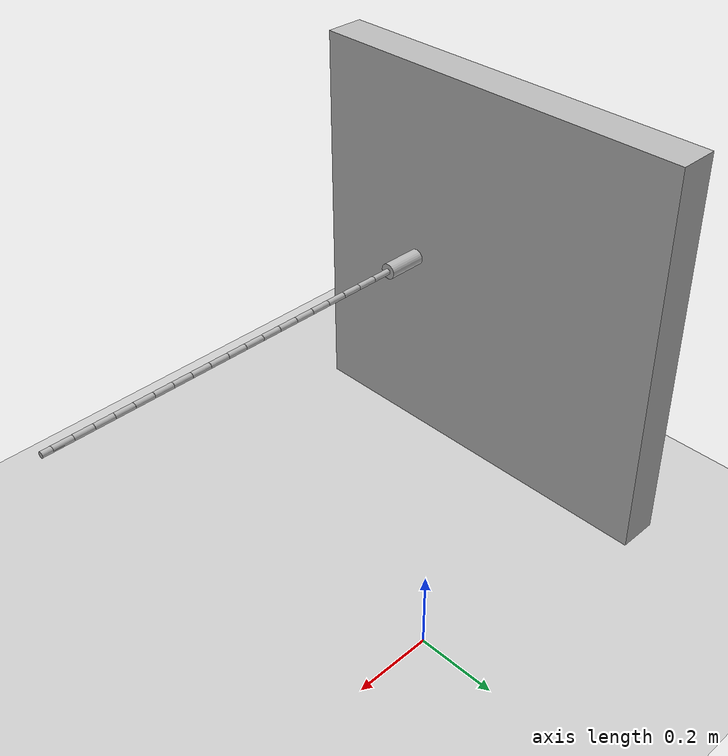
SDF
<sdf version="1.6">
 <world name="default">
  <light name="sun" type="directional">
   <pose>0 0 10 0 -0 0</pose>
   <diffuse>0.8 0.8 0.8 1</diffuse>
   <specular>0.1 0.1 0.1 1</specular>
   <attenuation>
    <range>1000</range>
    <constant>0.9</constant>
    <linear>0.01</linear>
    <quadratic>0.001</quadratic>
   </attenuation>
   <direction>-0.5 0.5 -1</direction>
  </light>
  <model name="ground_plane">
   <static>1</static>
   <link name="link">
    <collision name="collision">
     <geometry><plane><normal>0 0 1</normal><size>100 100</size></plane></geometry>
     <surface><friction><ode><mu>100</mu><mu2>50</mu2></ode></friction></surface>
    </collision>
    <visual name="visual">
     <cast_shadows>0</cast_shadows>
     <geometry><plane><normal>0 0 1</normal><size>100 100</size></plane></geometry>
     <material>
      <script><uri>file://media/materials/scripts/gazebo.material</uri><name>Gazebo/Grey</name></script>
     </material>
    </visual>
   </link>
  </model>
  <gravity>0 0 -9.8</gravity>
  <magnetic_field>6e-06 2.3e-05 -4.2e-05</magnetic_field>
  <atmosphere type="adiabatic"/>
  <physics name="default_physics" default="0" type="ode">
   <max_step_size>0.001</max_step_size>
   <real_time_factor>1</real_time_factor>
   <real_time_update_rate>1000</real_time_update_rate>
  </physics>
  <scene><ambient>0.4 0.4 0.4 1</ambient><background>0.7 0.7 0.7 1</background><shadows>1</shadows></scene>
  <spherical_coordinates>
   <surface_model>EARTH_WGS84</surface_model>
   <latitude_deg>0</latitude_deg>
   <longitude_deg>0</longitude_deg>
   <elevation>0</elevation>
   <heading_deg>0</heading_deg>
  </spherical_coordinates>
  <model name="cable_1">
   <pose>-0.439028 -0.50644 0.600001 0 -4e-06 0</pose>
   <joint name="joint_01_world" type="revolute">
    <child>plug</child>
    <parent>world</parent>
    <axis>
     <xyz>0.5 0 0.2</xyz>
     <dynamics>
      <damping>10</damping>
      <friction>0</friction>
      <spring_reference>0</spring_reference>
      <spring_stiffness>0</spring_stiffness>
     </dynamics>
     <use_parent_model_frame>1</use_parent_model_frame>
     <limit><lower>-1e+16</lower><upper>1e+16</upper></limit>
    </axis>
   </joint>
   <link name="plug">
    <pose>0 0 0 3.14159 1.57079 3.14159</pose>
    <inertial>
     <mass>0.1</mass>
     <inertia><ixx>0.01</ixx><ixy>0</ixy><ixz>0</ixz><iyy>0.01</iyy><iyz>0</iyz><izz>0.01</izz></inertia>
    </inertial>
    <collision name="plug_collision">
     <geometry><cylinder><radius>0.02</radius><length>0.1</length></cylinder></geometry>
    </collision>
    <visual name="plug_vis">
     <geometry><cylinder><radius>0.02</radius><length>0.1</length></cylinder></geometry>
    </visual>
   </link>
   <link name="link_01">
    <pose>0.05 0 0 0 -0 0</pose>
    <inertial>
     <mass>0.1</mass>
     <inertia><ixx>0.01</ixx><ixy>0</ixy><ixz>0</ixz><iyy>0.01</iyy><iyz>0</iyz><izz>0.01</izz></inertia>
    </inertial>
    <collision name="link_01_collision">
     <pose>0.025 0 0 0 1.57079 0</pose>
     <geometry><cylinder><length>0.05</length><radius>0.0075</radius></cylinder></geometry>
    </collision>
    <visual name="link_01_vis">
     <pose>0.025 0 0 0 1.57079 0</pose>
     <geometry><cylinder><length>0.05</length><radius>0.0075</radius></cylinder></geometry>
    </visual>
   </link>
   <joint name="joint_plug" type="revolute">
    <child>link_01</child>
    <parent>plug</parent>
    <axis>
     <xyz>0 0 0</xyz>
     <limit><lower>-0.7</lower><upper>0.7</upper></limit>
     <dynamics>
      <damping>10</damping>
      <friction>0</friction>
      <spring_reference>0</spring_reference>
      <spring_stiffness>0</spring_stiffness>
     </dynamics>
     <use_parent_model_frame>1</use_parent_model_frame>
    </axis>
   </joint>
   <link name="sphere_02">
    <gravity>0</gravity>
    <pose>0.1 0 0 0 -0 0</pose>
    <inertial>
     <mass>0.1</mass>
     <inertia><ixx>0.01</ixx><ixy>0</ixy><ixz>0</ixz><iyy>0.01</iyy><iyz>0</iyz><izz>0.01</izz></inertia>
    </inertial>
    <collision name="sphere_02_collision">
     <geometry><sphere><radius>0.0075</radius></sphere></geometry>
    </collision>
    <visual name="sphere_02_vis"><geometry><sphere><radius>0.0075</radius></sphere></geometry></visual>
   </link>
   <joint name="joint_02_1" type="revolute">
    <child>sphere_02</child>
    <parent>link_01</parent>
    <axis>
     <xyz>0 0 1</xyz>
     <limit><lower>-0.7</lower><upper>0.7</upper></limit>
     <dynamics>
      <damping>10</damping>
      <friction>0</friction>
      <spring_reference>0</spring_reference>
      <spring_stiffness>0</spring_stiffness>
     </dynamics>
     <use_parent_model_frame>1</use_parent_model_frame>
    </axis>
   </joint>
   <link name="link_02">
    <pose>0.1 0 0 0 -0 0</pose>
    <inertial>
     <mass>0.1</mass>
     <inertia><ixx>0.01</ixx><ixy>0</ixy><ixz>0</ixz><iyy>0.01</iyy><iyz>0</iyz><izz>0.01</izz></inertia>
    </inertial>
    <collision name="link_02_collision">
     <pose>0.025 0 0 0 1.57079 0</pose>
     <geometry><cylinder><length>0.05</length><radius>0.0075</radius></cylinder></geometry>
    </collision>
    <visual name="link_02_vis">
     <pose>0.025 0 0 0 1.57079 0</pose>
     <geometry><cylinder><length>0.05</length><radius>0.0075</radius></cylinder></geometry>
    </visual>
   </link>
   <joint name="joint_02_2" type="revolute">
    <child>link_02</child>
    <parent>sphere_02</parent>
    <axis>
     <xyz>0 1 0</xyz>
     <limit><lower>-0.7</lower><upper>0.7</upper></limit>
     <dynamics>
      <damping>10</damping>
      <friction>0</friction>
      <spring_reference>0</spring_reference>
      <spring_stiffness>0</spring_stiffness>
     </dynamics>
     <use_parent_model_frame>1</use_parent_model_frame>
    </axis>
   </joint>
   <link name="sphere_03">
    <gravity>0</gravity>
    <pose>0.15 0 0 0 -0 0</pose>
    <inertial>
     <mass>0.1</mass>
     <inertia><ixx>0.01</ixx><ixy>0</ixy><ixz>0</ixz><iyy>0.01</iyy><iyz>0</iyz><izz>0.01</izz></inertia>
    </inertial>
    <collision name="sphere_03_collision">
     <geometry><sphere><radius>0.0075</radius></sphere></geometry>
    </collision>
    <visual name="sphere_03_vis"><geometry><sphere><radius>0.0075</radius></sphere></geometry></visual>
   </link>
   <joint name="joint_03_1" type="revolute">
    <child>sphere_03</child>
    <parent>link_02</parent>
    <axis>
     <xyz>0 0 1</xyz>
     <limit><lower>-0.7</lower><upper>0.7</upper></limit>
     <dynamics>
      <damping>10</damping>
      <friction>0</friction>
      <spring_reference>0</spring_reference>
      <spring_stiffness>0</spring_stiffness>
     </dynamics>
     <use_parent_model_frame>1</use_parent_model_frame>
    </axis>
   </joint>
   <link name="link_03">
    <pose>0.15 0 0 0 -0 0</pose>
    <inertial>
     <mass>0.1</mass>
     <inertia><ixx>0.01</ixx><ixy>0</ixy><ixz>0</ixz><iyy>0.01</iyy><iyz>0</iyz><izz>0.01</izz></inertia>
    </inertial>
    <collision name="link_03_collision">
     <pose>0.025 0 0 0 1.57079 0</pose>
     <geometry><cylinder><length>0.05</length><radius>0.0075</radius></cylinder></geometry>
    </collision>
    <visual name="link_03_vis">
     <pose>0.025 0 0 0 1.57079 0</pose>
     <geometry><cylinder><length>0.05</length><radius>0.0075</radius></cylinder></geometry>
    </visual>
   </link>
   <joint name="joint_03_2" type="revolute">
    <child>link_03</child>
    <parent>sphere_03</parent>
    <axis>
     <xyz>0 1 0</xyz>
     <limit><lower>-0.7</lower><upper>0.7</upper></limit>
     <dynamics>
      <damping>10</damping>
      <friction>0</friction>
      <spring_reference>0</spring_reference>
      <spring_stiffness>0</spring_stiffness>
     </dynamics>
     <use_parent_model_frame>1</use_parent_model_frame>
    </axis>
   </joint>
   <link name="sphere_04">
    <gravity>0</gravity>
    <pose>0.2 0 0 0 -0 0</pose>
    <inertial>
     <mass>0.1</mass>
     <inertia><ixx>0.01</ixx><ixy>0</ixy><ixz>0</ixz><iyy>0.01</iyy><iyz>0</iyz><izz>0.01</izz></inertia>
    </inertial>
    <collision name="sphere_04_collision">
     <geometry><sphere><radius>0.0075</radius></sphere></geometry>
    </collision>
    <visual name="sphere_04_vis"><geometry><sphere><radius>0.0075</radius></sphere></geometry></visual>
   </link>
   <joint name="joint_04_1" type="revolute">
    <child>sphere_04</child>
    <parent>link_03</parent>
    <axis>
     <xyz>0 0 1</xyz>
     <limit><lower>-0.7</lower><upper>0.7</upper></limit>
     <dynamics>
      <damping>10</damping>
      <friction>0</friction>
      <spring_reference>0</spring_reference>
      <spring_stiffness>0</spring_stiffness>
     </dynamics>
     <use_parent_model_frame>1</use_parent_model_frame>
    </axis>
   </joint>
   <link name="link_04">
    <pose>0.2 0 0 0 -0 0</pose>
    <inertial>
     <mass>0.1</mass>
     <inertia><ixx>0.01</ixx><ixy>0</ixy><ixz>0</ixz><iyy>0.01</iyy><iyz>0</iyz><izz>0.01</izz></inertia>
    </inertial>
    <collision name="link_04_collision">
     <pose>0.025 0 0 0 1.57079 0</pose>
     <geometry><cylinder><length>0.05</length><radius>0.0075</radius></cylinder></geometry>
    </collision>
    <visual name="link_04_vis">
     <pose>0.025 0 0 0 1.57079 0</pose>
     <geometry><cylinder><length>0.05</length><radius>0.0075</radius></cylinder></geometry>
    </visual>
   </link>
   <joint name="joint_04_2" type="revolute">
    <child>link_04</child>
    <parent>sphere_04</parent>
    <axis>
     <xyz>0 1 0</xyz>
     <limit><lower>-0.7</lower><upper>0.7</upper></limit>
     <dynamics>
      <damping>10</damping>
      <friction>0</friction>
      <spring_reference>0</spring_reference>
      <spring_stiffness>0</spring_stiffness>
     </dynamics>
     <use_parent_model_frame>1</use_parent_model_frame>
    </axis>
   </joint>
   <link name="sphere_05">
    <gravity>0</gravity>
    <pose>0.25 0 0 0 -0 0</pose>
    <inertial>
     <mass>0.1</mass>
     <inertia><ixx>0.01</ixx><ixy>0</ixy><ixz>0</ixz><iyy>0.01</iyy><iyz>0</iyz><izz>0.01</izz></inertia>
    </inertial>
    <collision name="sphere_05_collision">
     <geometry><sphere><radius>0.0075</radius></sphere></geometry>
    </collision>
    <visual name="sphere_05_vis"><geometry><sphere><radius>0.0075</radius></sphere></geometry></visual>
   </link>
   <joint name="joint_05_1" type="revolute">
    <child>sphere_05</child>
    <parent>link_04</parent>
    <axis>
     <xyz>0 0 1</xyz>
     <limit><lower>-0.7</lower><upper>0.7</upper></limit>
     <dynamics>
      <damping>10</damping>
      <friction>0</friction>
      <spring_reference>0</spring_reference>
      <spring_stiffness>0</spring_stiffness>
     </dynamics>
     <use_parent_model_frame>1</use_parent_model_frame>
    </axis>
   </joint>
   <link name="link_05">
    <pose>0.25 0 0 0 -0 0</pose>
    <inertial>
     <mass>0.1</mass>
     <inertia><ixx>0.01</ixx><ixy>0</ixy><ixz>0</ixz><iyy>0.01</iyy><iyz>0</iyz><izz>0.01</izz></inertia>
    </inertial>
    <collision name="link_05_collision">
     <pose>0.025 0 0 0 1.57079 0</pose>
     <geometry><cylinder><length>0.05</length><radius>0.0075</radius></cylinder></geometry>
    </collision>
    <visual name="link_05_vis">
     <pose>0.025 0 0 0 1.57079 0</pose>
     <geometry><cylinder><length>0.05</length><radius>0.0075</radius></cylinder></geometry>
    </visual>
   </link>
   <joint name="joint_05_2" type="revolute">
    <child>link_05</child>
    <parent>sphere_05</parent>
    <axis>
     <xyz>0 1 0</xyz>
     <limit><lower>-0.7</lower><upper>0.7</upper></limit>
     <dynamics>
      <damping>10</damping>
      <friction>0</friction>
      <spring_reference>0</spring_reference>
      <spring_stiffness>0</spring_stiffness>
     </dynamics>
     <use_parent_model_frame>1</use_parent_model_frame>
    </axis>
   </joint>
   <link name="sphere_06">
    <gravity>0</gravity>
    <pose>0.3 0 0 0 -0 0</pose>
    <inertial>
     <mass>0.1</mass>
     <inertia><ixx>0.01</ixx><ixy>0</ixy><ixz>0</ixz><iyy>0.01</iyy><iyz>0</iyz><izz>0.01</izz></inertia>
    </inertial>
    <collision name="sphere_06_collision">
     <geometry><sphere><radius>0.0075</radius></sphere></geometry>
    </collision>
    <visual name="sphere_06_vis"><geometry><sphere><radius>0.0075</radius></sphere></geometry></visual>
   </link>
   <joint name="joint_06_1" type="revolute">
    <child>sphere_06</child>
    <parent>link_05</parent>
    <axis>
     <xyz>0 0 1</xyz>
     <limit><lower>-0.7</lower><upper>0.7</upper></limit>
     <dynamics>
      <damping>10</damping>
      <friction>0</friction>
      <spring_reference>0</spring_reference>
      <spring_stiffness>0</spring_stiffness>
     </dynamics>
     <use_parent_model_frame>1</use_parent_model_frame>
    </axis>
   </joint>
   <link name="link_06">
    <pose>0.3 0 0 0 -0 0</pose>
    <inertial>
     <mass>0.1</mass>
     <inertia><ixx>0.01</ixx><ixy>0</ixy><ixz>0</ixz><iyy>0.01</iyy><iyz>0</iyz><izz>0.01</izz></inertia>
    </inertial>
    <collision name="link_06_collision">
     <pose>0.025 0 0 0 1.57079 0</pose>
     <geometry><cylinder><length>0.05</length><radius>0.0075</radius></cylinder></geometry>
    </collision>
    <visual name="link_06_vis">
     <pose>0.025 0 0 0 1.57079 0</pose>
     <geometry><cylinder><length>0.05</length><radius>0.0075</radius></cylinder></geometry>
    </visual>
   </link>
   <joint name="joint_06_2" type="revolute">
    <child>link_06</child>
    <parent>sphere_06</parent>
    <axis>
     <xyz>0 1 0</xyz>
     <limit><lower>-0.7</lower><upper>0.7</upper></limit>
     <dynamics>
      <damping>10</damping>
      <friction>0</friction>
      <spring_reference>0</spring_reference>
      <spring_stiffness>0</spring_stiffness>
     </dynamics>
     <use_parent_model_frame>1</use_parent_model_frame>
    </axis>
   </joint>
   <link name="sphere_07">
    <gravity>0</gravity>
    <pose>0.35 0 0 0 -0 0</pose>
    <inertial>
     <mass>0.1</mass>
     <inertia><ixx>0.01</ixx><ixy>0</ixy><ixz>0</ixz><iyy>0.01</iyy><iyz>0</iyz><izz>0.01</izz></inertia>
    </inertial>
    <collision name="sphere_07_collision">
     <geometry><sphere><radius>0.0075</radius></sphere></geometry>
    </collision>
    <visual name="sphere_07_vis"><geometry><sphere><radius>0.0075</radius></sphere></geometry></visual>
   </link>
   <joint name="joint_07_1" type="revolute">
    <child>sphere_07</child>
    <parent>link_06</parent>
    <axis>
     <xyz>0 0 1</xyz>
     <limit><lower>-0.7</lower><upper>0.7</upper></limit>
     <dynamics>
      <damping>10</damping>
      <friction>0</friction>
      <spring_reference>0</spring_reference>
      <spring_stiffness>0</spring_stiffness>
     </dynamics>
     <use_parent_model_frame>1</use_parent_model_frame>
    </axis>
   </joint>
   <link name="link_07">
    <pose>0.35 0 0 0 -0 0</pose>
    <inertial>
     <mass>0.1</mass>
     <inertia><ixx>0.01</ixx><ixy>0</ixy><ixz>0</ixz><iyy>0.01</iyy><iyz>0</iyz><izz>0.01</izz></inertia>
    </inertial>
    <collision name="link_07_collision">
     <pose>0.025 0 0 0 1.57079 0</pose>
     <geometry><cylinder><length>0.05</length><radius>0.0075</radius></cylinder></geometry>
    </collision>
    <visual name="link_07_vis">
     <pose>0.025 0 0 0 1.57079 0</pose>
     <geometry><cylinder><length>0.05</length><radius>0.0075</radius></cylinder></geometry>
    </visual>
   </link>
   <joint name="joint_07_2" type="revolute">
    <child>link_07</child>
    <parent>sphere_07</parent>
    <axis>
     <xyz>0 1 0</xyz>
     <limit><lower>-0.7</lower><upper>0.7</upper></limit>
     <dynamics>
      <damping>10</damping>
      <friction>0</friction>
      <spring_reference>0</spring_reference>
      <spring_stiffness>0</spring_stiffness>
     </dynamics>
     <use_parent_model_frame>1</use_parent_model_frame>
    </axis>
   </joint>
   <link name="sphere_08">
    <gravity>0</gravity>
    <pose>0.4 0 0 0 -0 0</pose>
    <inertial>
     <mass>0.1</mass>
     <inertia><ixx>0.01</ixx><ixy>0</ixy><ixz>0</ixz><iyy>0.01</iyy><iyz>0</iyz><izz>0.01</izz></inertia>
    </inertial>
    <collision name="sphere_08_collision">
     <geometry><sphere><radius>0.0075</radius></sphere></geometry>
    </collision>
    <visual name="sphere_08_vis"><geometry><sphere><radius>0.0075</radius></sphere></geometry></visual>
   </link>
   <joint name="joint_08_1" type="revolute">
    <child>sphere_08</child>
    <parent>link_07</parent>
    <axis>
     <xyz>0 0 1</xyz>
     <limit><lower>-0.7</lower><upper>0.7</upper></limit>
     <dynamics>
      <damping>10</damping>
      <friction>0</friction>
      <spring_reference>0</spring_reference>
      <spring_stiffness>0</spring_stiffness>
     </dynamics>
     <use_parent_model_frame>1</use_parent_model_frame>
    </axis>
   </joint>
   <link name="link_08">
    <pose>0.4 0 0 0 -0 0</pose>
    <inertial>
     <mass>0.1</mass>
     <inertia><ixx>0.01</ixx><ixy>0</ixy><ixz>0</ixz><iyy>0.01</iyy><iyz>0</iyz><izz>0.01</izz></inertia>
    </inertial>
    <collision name="link_08_collision">
     <pose>0.025 0 0 0 1.57079 0</pose>
     <geometry><cylinder><length>0.05</length><radius>0.0075</radius></cylinder></geometry>
    </collision>
    <visual name="link_08_vis">
     <pose>0.025 0 0 0 1.57079 0</pose>
     <geometry><cylinder><length>0.05</length><radius>0.0075</radius></cylinder></geometry>
    </visual>
   </link>
   <joint name="joint_08_2" type="revolute">
    <child>link_08</child>
    <parent>sphere_08</parent>
    <axis>
     <xyz>0 1 0</xyz>
     <limit><lower>-0.7</lower><upper>0.7</upper></limit>
     <dynamics>
      <damping>10</damping>
      <friction>0</friction>
      <spring_reference>0</spring_reference>
      <spring_stiffness>0</spring_stiffness>
     </dynamics>
     <use_parent_model_frame>1</use_parent_model_frame>
    </axis>
   </joint>
   <link name="sphere_09">
    <gravity>0</gravity>
    <pose>0.45 0 0 0 -0 0</pose>
    <inertial>
     <mass>0.1</mass>
     <inertia><ixx>0.01</ixx><ixy>0</ixy><ixz>0</ixz><iyy>0.01</iyy><iyz>0</iyz><izz>0.01</izz></inertia>
    </inertial>
    <collision name="sphere_09_collision">
     <geometry><sphere><radius>0.0075</radius></sphere></geometry>
    </collision>
    <visual name="sphere_09_vis"><geometry><sphere><radius>0.0075</radius></sphere></geometry></visual>
   </link>
   <joint name="joint_09_1" type="revolute">
    <child>sphere_09</child>
    <parent>link_08</parent>
    <axis>
     <xyz>0 0 1</xyz>
     <limit><lower>-0.7</lower><upper>0.7</upper></limit>
     <dynamics>
      <damping>10</damping>
      <friction>0</friction>
      <spring_reference>0</spring_reference>
      <spring_stiffness>0</spring_stiffness>
     </dynamics>
     <use_parent_model_frame>1</use_parent_model_frame>
    </axis>
   </joint>
   <link name="link_09">
    <pose>0.45 0 0 0 -0 0</pose>
    <inertial>
     <mass>0.1</mass>
     <inertia><ixx>0.01</ixx><ixy>0</ixy><ixz>0</ixz><iyy>0.01</iyy><iyz>0</iyz><izz>0.01</izz></inertia>
    </inertial>
    <collision name="link_09_collision">
     <pose>0.025 0 0 0 1.57079 0</pose>
     <geometry><cylinder><length>0.05</length><radius>0.0075</radius></cylinder></geometry>
    </collision>
    <visual name="link_09_vis">
     <pose>0.025 0 0 0 1.57079 0</pose>
     <geometry><cylinder><length>0.05</length><radius>0.0075</radius></cylinder></geometry>
    </visual>
   </link>
   <joint name="joint_09_2" type="revolute">
    <child>link_09</child>
    <parent>sphere_09</parent>
    <axis>
     <xyz>0 1 0</xyz>
     <limit><lower>-0.7</lower><upper>0.7</upper></limit>
     <dynamics>
      <damping>10</damping>
      <friction>0</friction>
      <spring_reference>0</spring_reference>
      <spring_stiffness>0</spring_stiffness>
     </dynamics>
     <use_parent_model_frame>1</use_parent_model_frame>
    </axis>
   </joint>
   <link name="sphere_10">
    <gravity>0</gravity>
    <pose>0.5 0 0 0 -0 0</pose>
    <inertial>
     <mass>0.1</mass>
     <inertia><ixx>0.01</ixx><ixy>0</ixy><ixz>0</ixz><iyy>0.01</iyy><iyz>0</iyz><izz>0.01</izz></inertia>
    </inertial>
    <collision name="sphere_10_collision">
     <geometry><sphere><radius>0.0075</radius></sphere></geometry>
    </collision>
    <visual name="sphere_10_vis"><geometry><sphere><radius>0.0075</radius></sphere></geometry></visual>
   </link>
   <joint name="joint_10_1" type="revolute">
    <child>sphere_10</child>
    <parent>link_09</parent>
    <axis>
     <xyz>0 0 1</xyz>
     <limit><lower>-0.7</lower><upper>0.7</upper></limit>
     <dynamics>
      <damping>10</damping>
      <friction>0</friction>
      <spring_reference>0</spring_reference>
      <spring_stiffness>0</spring_stiffness>
     </dynamics>
     <use_parent_model_frame>1</use_parent_model_frame>
    </axis>
   </joint>
   <link name="link_10">
    <pose>0.5 0 0 0 -0 0</pose>
    <inertial>
     <mass>0.1</mass>
     <inertia><ixx>0.01</ixx><ixy>0</ixy><ixz>0</ixz><iyy>0.01</iyy><iyz>0</iyz><izz>0.01</izz></inertia>
    </inertial>
    <collision name="link_10_collision">
     <pose>0.025 0 0 0 1.57079 0</pose>
     <geometry><cylinder><length>0.05</length><radius>0.0075</radius></cylinder></geometry>
    </collision>
    <visual name="link_10_vis">
     <pose>0.025 0 0 0 1.57079 0</pose>
     <geometry><cylinder><length>0.05</length><radius>0.0075</radius></cylinder></geometry>
    </visual>
   </link>
   <joint name="joint_10_2" type="revolute">
    <child>link_10</child>
    <parent>sphere_10</parent>
    <axis>
     <xyz>0 1 0</xyz>
     <limit><lower>-0.7</lower><upper>0.7</upper></limit>
     <dynamics>
      <damping>10</damping>
      <friction>0</friction>
      <spring_reference>0</spring_reference>
      <spring_stiffness>0</spring_stiffness>
     </dynamics>
     <use_parent_model_frame>1</use_parent_model_frame>
    </axis>
   </joint>
   <link name="sphere_11">
    <gravity>0</gravity>
    <pose>0.55 0 0 0 -0 0</pose>
    <inertial>
     <mass>0.1</mass>
     <inertia><ixx>0.01</ixx><ixy>0</ixy><ixz>0</ixz><iyy>0.01</iyy><iyz>0</iyz><izz>0.01</izz></inertia>
    </inertial>
    <collision name="sphere_11_collision">
     <geometry><sphere><radius>0.0075</radius></sphere></geometry>
    </collision>
    <visual name="sphere_11_vis"><geometry><sphere><radius>0.0075</radius></sphere></geometry></visual>
   </link>
   <joint name="joint_11_1" type="revolute">
    <child>sphere_11</child>
    <parent>link_10</parent>
    <axis>
     <xyz>0 0 1</xyz>
     <limit><lower>-0.7</lower><upper>0.7</upper></limit>
     <dynamics>
      <damping>10</damping>
      <friction>0</friction>
      <spring_reference>0</spring_reference>
      <spring_stiffness>0</spring_stiffness>
     </dynamics>
     <use_parent_model_frame>1</use_parent_model_frame>
    </axis>
   </joint>
   <link name="link_11">
    <pose>0.55 0 0 0 -0 0</pose>
    <inertial>
     <mass>0.1</mass>
     <inertia><ixx>0.01</ixx><ixy>0</ixy><ixz>0</ixz><iyy>0.01</iyy><iyz>0</iyz><izz>0.01</izz></inertia>
    </inertial>
    <collision name="link_11_collision">
     <pose>0.025 0 0 0 1.57079 0</pose>
     <geometry><cylinder><length>0.05</length><radius>0.0075</radius></cylinder></geometry>
    </collision>
    <visual name="link_11_vis">
     <pose>0.025 0 0 0 1.57079 0</pose>
     <geometry><cylinder><length>0.05</length><radius>0.0075</radius></cylinder></geometry>
    </visual>
   </link>
   <joint name="joint_11_2" type="revolute">
    <child>link_11</child>
    <parent>sphere_11</parent>
    <axis>
     <xyz>0 1 0</xyz>
     <limit><lower>-0.7</lower><upper>0.7</upper></limit>
     <dynamics>
      <damping>10</damping>
      <friction>0</friction>
      <spring_reference>0</spring_reference>
      <spring_stiffness>0</spring_stiffness>
     </dynamics>
     <use_parent_model_frame>1</use_parent_model_frame>
    </axis>
   </joint>
   <link name="sphere_12">
    <gravity>0</gravity>
    <pose>0.6 0 0 0 -0 0</pose>
    <inertial>
     <mass>0.1</mass>
     <inertia><ixx>0.01</ixx><ixy>0</ixy><ixz>0</ixz><iyy>0.01</iyy><iyz>0</iyz><izz>0.01</izz></inertia>
    </inertial>
    <collision name="sphere_12_collision">
     <geometry><sphere><radius>0.0075</radius></sphere></geometry>
    </collision>
    <visual name="sphere_12_vis"><geometry><sphere><radius>0.0075</radius></sphere></geometry></visual>
   </link>
   <joint name="joint_12_1" type="revolute">
    <child>sphere_12</child>
    <parent>link_11</parent>
    <axis>
     <xyz>0 0 1</xyz>
     <limit><lower>-0.7</lower><upper>0.7</upper></limit>
     <dynamics>
      <damping>10</damping>
      <friction>0</friction>
      <spring_reference>0</spring_reference>
      <spring_stiffness>0</spring_stiffness>
     </dynamics>
     <use_parent_model_frame>1</use_parent_model_frame>
    </axis>
   </joint>
   <link name="link_12">
    <pose>0.6 0 0 0 -0 0</pose>
    <inertial>
     <mass>0.1</mass>
     <inertia><ixx>0.01</ixx><ixy>0</ixy><ixz>0</ixz><iyy>0.01</iyy><iyz>0</iyz><izz>0.01</izz></inertia>
    </inertial>
    <collision name="link_12_collision">
     <pose>0.025 0 0 0 1.57079 0</pose>
     <geometry><cylinder><length>0.05</length><radius>0.0075</radius></cylinder></geometry>
    </collision>
    <visual name="link_12_vis">
     <pose>0.025 0 0 0 1.57079 0</pose>
     <geometry><cylinder><length>0.05</length><radius>0.0075</radius></cylinder></geometry>
    </visual>
   </link>
   <joint name="joint_12_2" type="revolute">
    <child>link_12</child>
    <parent>sphere_12</parent>
    <axis>
     <xyz>0 1 0</xyz>
     <limit><lower>-0.7</lower><upper>0.7</upper></limit>
     <dynamics>
      <damping>10</damping>
      <friction>0</friction>
      <spring_reference>0</spring_reference>
      <spring_stiffness>0</spring_stiffness>
     </dynamics>
     <use_parent_model_frame>1</use_parent_model_frame>
    </axis>
   </joint>
   <link name="sphere_13">
    <gravity>0</gravity>
    <pose>0.65 0 0 0 -0 0</pose>
    <inertial>
     <mass>0.1</mass>
     <inertia><ixx>0.01</ixx><ixy>0</ixy><ixz>0</ixz><iyy>0.01</iyy><iyz>0</iyz><izz>0.01</izz></inertia>
    </inertial>
    <collision name="sphere_13_collision">
     <geometry><sphere><radius>0.0075</radius></sphere></geometry>
    </collision>
    <visual name="sphere_13_vis"><geometry><sphere><radius>0.0075</radius></sphere></geometry></visual>
   </link>
   <joint name="joint_13_1" type="revolute">
    <child>sphere_13</child>
    <parent>link_12</parent>
    <axis>
     <xyz>0 0 1</xyz>
     <limit><lower>-0.7</lower><upper>0.7</upper></limit>
     <dynamics>
      <damping>10</damping>
      <friction>0</friction>
      <spring_reference>0</spring_reference>
      <spring_stiffness>0</spring_stiffness>
     </dynamics>
     <use_parent_model_frame>1</use_parent_model_frame>
    </axis>
   </joint>
   <link name="link_13">
    <pose>0.65 0 0 0 -0 0</pose>
    <inertial>
     <mass>0.1</mass>
     <inertia><ixx>0.01</ixx><ixy>0</ixy><ixz>0</ixz><iyy>0.01</iyy><iyz>0</iyz><izz>0.01</izz></inertia>
    </inertial>
    <collision name="link_13_collision">
     <pose>0.025 0 0 0 1.57079 0</pose>
     <geometry><cylinder><length>0.05</length><radius>0.0075</radius></cylinder></geometry>
    </collision>
    <visual name="link_13_vis">
     <pose>0.025 0 0 0 1.57079 0</pose>
     <geometry><cylinder><length>0.05</length><radius>0.0075</radius></cylinder></geometry>
    </visual>
   </link>
   <joint name="joint_13_2" type="revolute">
    <child>link_13</child>
    <parent>sphere_13</parent>
    <axis>
     <xyz>0 1 0</xyz>
     <limit><lower>-0.7</lower><upper>0.7</upper></limit>
     <dynamics>
      <damping>10</damping>
      <friction>0</friction>
      <spring_reference>0</spring_reference>
      <spring_stiffness>0</spring_stiffness>
     </dynamics>
     <use_parent_model_frame>1</use_parent_model_frame>
    </axis>
   </joint>
   <link name="sphere_14">
    <gravity>0</gravity>
    <pose>0.7 0 0 0 -0 0</pose>
    <inertial>
     <mass>0.1</mass>
     <inertia><ixx>0.01</ixx><ixy>0</ixy><ixz>0</ixz><iyy>0.01</iyy><iyz>0</iyz><izz>0.01</izz></inertia>
    </inertial>
    <collision name="sphere_14_collision">
     <geometry><sphere><radius>0.0075</radius></sphere></geometry>
    </collision>
    <visual name="sphere_14_vis"><geometry><sphere><radius>0.0075</radius></sphere></geometry></visual>
   </link>
   <joint name="joint_14_1" type="revolute">
    <child>sphere_14</child>
    <parent>link_13</parent>
    <axis>
     <xyz>0 0 1</xyz>
     <limit><lower>-0.7</lower><upper>0.7</upper></limit>
     <dynamics>
      <damping>10</damping>
      <friction>0</friction>
      <spring_reference>0</spring_reference>
      <spring_stiffness>0</spring_stiffness>
     </dynamics>
     <use_parent_model_frame>1</use_parent_model_frame>
    </axis>
   </joint>
   <link name="link_14">
    <pose>0.7 0 0 0 -0 0</pose>
    <inertial>
     <mass>0.1</mass>
     <inertia><ixx>0.01</ixx><ixy>0</ixy><ixz>0</ixz><iyy>0.01</iyy><iyz>0</iyz><izz>0.01</izz></inertia>
    </inertial>
    <collision name="link_14_collision">
     <pose>0.025 0 0 0 1.57079 0</pose>
     <geometry><cylinder><length>0.05</length><radius>0.0075</radius></cylinder></geometry>
    </collision>
    <visual name="link_14_vis">
     <pose>0.025 0 0 0 1.57079 0</pose>
     <geometry><cylinder><length>0.05</length><radius>0.0075</radius></cylinder></geometry>
    </visual>
   </link>
   <joint name="joint_14_2" type="revolute">
    <child>link_14</child>
    <parent>sphere_14</parent>
    <axis>
     <xyz>0 1 0</xyz>
     <limit><lower>-0.7</lower><upper>0.7</upper></limit>
     <dynamics>
      <damping>10</damping>
      <friction>0</friction>
      <spring_reference>0</spring_reference>
      <spring_stiffness>0</spring_stiffness>
     </dynamics>
     <use_parent_model_frame>1</use_parent_model_frame>
    </axis>
   </joint>
   <link name="sphere_15">
    <gravity>0</gravity>
    <pose>0.75 0 0 0 -0 0</pose>
    <inertial>
     <mass>0.1</mass>
     <inertia><ixx>0.01</ixx><ixy>0</ixy><ixz>0</ixz><iyy>0.01</iyy><iyz>0</iyz><izz>0.01</izz></inertia>
    </inertial>
    <collision name="sphere_15_collision">
     <geometry><sphere><radius>0.0075</radius></sphere></geometry>
    </collision>
    <visual name="sphere_15_vis"><geometry><sphere><radius>0.0075</radius></sphere></geometry></visual>
   </link>
   <joint name="joint_15_1" type="revolute">
    <child>sphere_15</child>
    <parent>link_14</parent>
    <axis>
     <xyz>0 0 1</xyz>
     <limit><lower>-0.7</lower><upper>0.7</upper></limit>
     <dynamics>
      <damping>10</damping>
      <friction>0</friction>
      <spring_reference>0</spring_reference>
      <spring_stiffness>0</spring_stiffness>
     </dynamics>
     <use_parent_model_frame>1</use_parent_model_frame>
    </axis>
   </joint>
   <link name="link_15">
    <pose>0.75 0 0 0 -0 0</pose>
    <inertial>
     <mass>0.1</mass>
     <inertia><ixx>0.01</ixx><ixy>0</ixy><ixz>0</ixz><iyy>0.01</iyy><iyz>0</iyz><izz>0.01</izz></inertia>
    </inertial>
    <collision name="link_15_collision">
     <pose>0.025 0 0 0 1.57079 0</pose>
     <geometry><cylinder><length>0.05</length><radius>0.0075</radius></cylinder></geometry>
    </collision>
    <visual name="link_15_vis">
     <pose>0.025 0 0 0 1.57079 0</pose>
     <geometry><cylinder><length>0.05</length><radius>0.0075</radius></cylinder></geometry>
    </visual>
   </link>
   <joint name="joint_15_2" type="revolute">
    <child>link_15</child>
    <parent>sphere_15</parent>
    <axis>
     <xyz>0 1 0</xyz>
     <limit><lower>-0.7</lower><upper>0.7</upper></limit>
     <dynamics>
      <damping>10</damping>
      <friction>0</friction>
      <spring_reference>0</spring_reference>
      <spring_stiffness>0</spring_stiffness>
     </dynamics>
     <use_parent_model_frame>1</use_parent_model_frame>
    </axis>
   </joint>
   <link name="sphere_16">
    <gravity>0</gravity>
    <pose>0.8 0 0 0 -0 0</pose>
    <inertial>
     <mass>0.1</mass>
     <inertia><ixx>0.01</ixx><ixy>0</ixy><ixz>0</ixz><iyy>0.01</iyy><iyz>0</iyz><izz>0.01</izz></inertia>
    </inertial>
    <collision name="sphere_16_collision">
     <geometry><sphere><radius>0.0075</radius></sphere></geometry>
    </collision>
    <visual name="sphere_16_vis"><geometry><sphere><radius>0.0075</radius></sphere></geometry></visual>
   </link>
   <joint name="joint_16_1" type="revolute">
    <child>sphere_16</child>
    <parent>link_15</parent>
    <axis>
     <xyz>0 0 1</xyz>
     <limit><lower>-0.7</lower><upper>0.7</upper></limit>
     <dynamics>
      <damping>10</damping>
      <friction>0</friction>
      <spring_reference>0</spring_reference>
      <spring_stiffness>0</spring_stiffness>
     </dynamics>
     <use_parent_model_frame>1</use_parent_model_frame>
    </axis>
   </joint>
   <link name="link_16">
    <pose>0.8 0 0 0 -0 0</pose>
    <inertial>
     <mass>0.1</mass>
     <inertia><ixx>0.01</ixx><ixy>0</ixy><ixz>0</ixz><iyy>0.01</iyy><iyz>0</iyz><izz>0.01</izz></inertia>
    </inertial>
    <collision name="link_16_collision">
     <pose>0.025 0 0 0 1.57079 0</pose>
     <geometry><cylinder><length>0.05</length><radius>0.0075</radius></cylinder></geometry>
    </collision>
    <visual name="link_16_vis">
     <pose>0.025 0 0 0 1.57079 0</pose>
     <geometry><cylinder><length>0.05</length><radius>0.0075</radius></cylinder></geometry>
    </visual>
   </link>
   <joint name="joint_16_2" type="revolute">
    <child>link_16</child>
    <parent>sphere_16</parent>
    <axis>
     <xyz>0 1 0</xyz>
     <limit><lower>-0.7</lower><upper>0.7</upper></limit>
     <dynamics>
      <damping>10</damping>
      <friction>0</friction>
      <spring_reference>0</spring_reference>
      <spring_stiffness>0</spring_stiffness>
     </dynamics>
     <use_parent_model_frame>1</use_parent_model_frame>
    </axis>
   </joint>
   <link name="sphere_17">
    <gravity>0</gravity>
    <pose>0.85 0 0 0 -0 0</pose>
    <inertial>
     <mass>0.1</mass>
     <inertia><ixx>0.01</ixx><ixy>0</ixy><ixz>0</ixz><iyy>0.01</iyy><iyz>0</iyz><izz>0.01</izz></inertia>
    </inertial>
    <collision name="sphere_17_collision">
     <geometry><sphere><radius>0.0075</radius></sphere></geometry>
    </collision>
    <visual name="sphere_17_vis"><geometry><sphere><radius>0.0075</radius></sphere></geometry></visual>
   </link>
   <joint name="joint_17_1" type="revolute">
    <child>sphere_17</child>
    <parent>link_16</parent>
    <axis>
     <xyz>0 0 1</xyz>
     <limit><lower>-0.7</lower><upper>0.7</upper></limit>
     <dynamics>
      <damping>10</damping>
      <friction>0</friction>
      <spring_reference>0</spring_reference>
      <spring_stiffness>0</spring_stiffness>
     </dynamics>
     <use_parent_model_frame>1</use_parent_model_frame>
    </axis>
   </joint>
   <link name="link_17">
    <pose>0.85 0 0 0 -0 0</pose>
    <inertial>
     <mass>0.1</mass>
     <inertia><ixx>0.01</ixx><ixy>0</ixy><ixz>0</ixz><iyy>0.01</iyy><iyz>0</iyz><izz>0.01</izz></inertia>
    </inertial>
    <collision name="link_17_collision">
     <pose>0.025 0 0 0 1.57079 0</pose>
     <geometry><cylinder><length>0.05</length><radius>0.0075</radius></cylinder></geometry>
    </collision>
    <visual name="link_17_vis">
     <pose>0.025 0 0 0 1.57079 0</pose>
     <geometry><cylinder><length>0.05</length><radius>0.0075</radius></cylinder></geometry>
    </visual>
   </link>
   <joint name="joint_17_2" type="revolute">
    <child>link_17</child>
    <parent>sphere_17</parent>
    <axis>
     <xyz>0 1 0</xyz>
     <limit><lower>-0.7</lower><upper>0.7</upper></limit>
     <dynamics>
      <damping>10</damping>
      <friction>0</friction>
      <spring_reference>0</spring_reference>
      <spring_stiffness>0</spring_stiffness>
     </dynamics>
     <use_parent_model_frame>1</use_parent_model_frame>
    </axis>
   </joint>
   <link name="sphere_18">
    <gravity>0</gravity>
    <pose>0.9 0 0 0 -0 0</pose>
    <inertial>
     <mass>0.1</mass>
     <inertia><ixx>0.01</ixx><ixy>0</ixy><ixz>0</ixz><iyy>0.01</iyy><iyz>0</iyz><izz>0.01</izz></inertia>
    </inertial>
    <collision name="sphere_18_collision">
     <geometry><sphere><radius>0.0075</radius></sphere></geometry>
    </collision>
    <visual name="sphere_18_vis"><geometry><sphere><radius>0.0075</radius></sphere></geometry></visual>
   </link>
   <joint name="joint_18_1" type="revolute">
    <child>sphere_18</child>
    <parent>link_17</parent>
    <axis>
     <xyz>0 0 1</xyz>
     <limit><lower>-0.7</lower><upper>0.7</upper></limit>
     <dynamics>
      <damping>10</damping>
      <friction>0</friction>
      <spring_reference>0</spring_reference>
      <spring_stiffness>0</spring_stiffness>
     </dynamics>
     <use_parent_model_frame>1</use_parent_model_frame>
    </axis>
   </joint>
   <link name="link_18">
    <pose>0.9 0 0 0 -0 0</pose>
    <inertial>
     <mass>0.1</mass>
     <inertia><ixx>0.01</ixx><ixy>0</ixy><ixz>0</ixz><iyy>0.01</iyy><iyz>0</iyz><izz>0.01</izz></inertia>
    </inertial>
    <collision name="link_18_collision">
     <pose>0.025 0 0 0 1.57079 0</pose>
     <geometry><cylinder><length>0.05</length><radius>0.0075</radius></cylinder></geometry>
    </collision>
    <visual name="link_18_vis">
     <pose>0.025 0 0 0 1.57079 0</pose>
     <geometry><cylinder><length>0.05</length><radius>0.0075</radius></cylinder></geometry>
    </visual>
   </link>
   <joint name="joint_18_2" type="revolute">
    <child>link_18</child>
    <parent>sphere_18</parent>
    <axis>
     <xyz>0 1 0</xyz>
     <limit><lower>-0.7</lower><upper>0.7</upper></limit>
     <dynamics>
      <damping>10</damping>
      <friction>0</friction>
      <spring_reference>0</spring_reference>
      <spring_stiffness>0</spring_stiffness>
     </dynamics>
     <use_parent_model_frame>1</use_parent_model_frame>
    </axis>
   </joint>
   <link name="sphere_19">
    <gravity>0</gravity>
    <pose>0.95 0 0 0 -0 0</pose>
    <inertial>
     <mass>0.1</mass>
     <inertia><ixx>0.01</ixx><ixy>0</ixy><ixz>0</ixz><iyy>0.01</iyy><iyz>0</iyz><izz>0.01</izz></inertia>
    </inertial>
    <collision name="sphere_19_collision">
     <geometry><sphere><radius>0.0075</radius></sphere></geometry>
    </collision>
    <visual name="sphere_19_vis"><geometry><sphere><radius>0.0075</radius></sphere></geometry></visual>
   </link>
   <joint name="joint_19_1" type="revolute">
    <child>sphere_19</child>
    <parent>link_18</parent>
    <axis>
     <xyz>0 0 1</xyz>
     <limit><lower>-0.7</lower><upper>0.7</upper></limit>
     <dynamics>
      <damping>10</damping>
      <friction>0</friction>
      <spring_reference>0</spring_reference>
      <spring_stiffness>0</spring_stiffness>
     </dynamics>
     <use_parent_model_frame>1</use_parent_model_frame>
    </axis>
   </joint>
   <link name="link_19">
    <pose>0.95 0 0 0 -0 0</pose>
    <inertial>
     <mass>0.1</mass>
     <inertia><ixx>0.01</ixx><ixy>0</ixy><ixz>0</ixz><iyy>0.01</iyy><iyz>0</iyz><izz>0.01</izz></inertia>
    </inertial>
    <collision name="link_19_collision">
     <pose>0.025 0 0 0 1.57079 0</pose>
     <geometry><cylinder><length>0.05</length><radius>0.0075</radius></cylinder></geometry>
    </collision>
    <visual name="link_19_vis">
     <pose>0.025 0 0 0 1.57079 0</pose>
     <geometry><cylinder><length>0.05</length><radius>0.0075</radius></cylinder></geometry>
    </visual>
   </link>
   <joint name="joint_19_2" type="revolute">
    <child>link_19</child>
    <parent>sphere_19</parent>
    <axis>
     <xyz>0 1 0</xyz>
     <limit><lower>-0.7</lower><upper>0.7</upper></limit>
     <dynamics>
      <damping>10</damping>
      <friction>0</friction>
      <spring_reference>0</spring_reference>
      <spring_stiffness>0</spring_stiffness>
     </dynamics>
     <use_parent_model_frame>1</use_parent_model_frame>
    </axis>
   </joint>
   <link name="sphere_20">
    <gravity>0</gravity>
    <pose>1 0 0 0 -0 0</pose>
    <inertial>
     <mass>0.1</mass>
     <inertia><ixx>0.01</ixx><ixy>0</ixy><ixz>0</ixz><iyy>0.01</iyy><iyz>0</iyz><izz>0.01</izz></inertia>
    </inertial>
    <collision name="sphere_20_collision">
     <geometry><sphere><radius>0.0075</radius></sphere></geometry>
    </collision>
    <visual name="sphere_20_vis"><geometry><sphere><radius>0.0075</radius></sphere></geometry></visual>
   </link>
   <joint name="joint_20_1" type="revolute">
    <child>sphere_20</child>
    <parent>link_19</parent>
    <axis>
     <xyz>0 0 1</xyz>
     <limit><lower>-0.7</lower><upper>0.7</upper></limit>
     <dynamics>
      <damping>10</damping>
      <friction>0</friction>
      <spring_reference>0</spring_reference>
      <spring_stiffness>0</spring_stiffness>
     </dynamics>
     <use_parent_model_frame>1</use_parent_model_frame>
    </axis>
   </joint>
   <link name="coupling">
    <pose>1 0 0 0 -0 0</pose>
    <inertial>
     <mass>0.1</mass>
     <inertia><ixx>0.01</ixx><ixy>0</ixy><ixz>0</ixz><iyy>0.01</iyy><iyz>0</iyz><izz>0.01</izz></inertia>
    </inertial>
    <collision name="coupling_collision">
     <pose>0 0 0 0 1.57079 0</pose>
     <geometry><cylinder><length>0.05</length><radius>0.0075</radius></cylinder></geometry>
    </collision>
    <visual name="coupling_vis">
     <pose>0 0 0 0 1.57079 0</pose>
     <geometry><cylinder><length>0.05</length><radius>0.0075</radius></cylinder></geometry>
    </visual>
   </link>
   <joint name="joint_20_2" type="revolute">
    <child>coupling</child>
    <parent>sphere_20</parent>
    <axis>
     <xyz>0 1 0</xyz>
     <limit><lower>-0.7</lower><upper>0.7</upper></limit>
     <dynamics>
      <damping>10</damping>
      <friction>0</friction>
      <spring_reference>0</spring_reference>
      <spring_stiffness>0</spring_stiffness>
     </dynamics>
     <use_parent_model_frame>1</use_parent_model_frame>
    </axis>
   </joint>
   <link name="wall">
    <pose>-0.1 0 0 0 -0 0</pose>
    <inertial>
     <mass>100000</mass>
     <inertia><ixx>0.01</ixx><ixy>0</ixy><ixz>0</ixz><iyy>0.01</iyy><iyz>0</iyz><izz>0.01</izz></inertia>
    </inertial>
    <collision name="wall_collision">
     <pose>0 0.2 0 0 -0 0</pose>
     <geometry><box><size>0.1 1 1</size></box></geometry>
    </collision>
    <visual name="wall_vis">
     <pose>0 0.2 0 0 -0 0</pose>
     <geometry><box><size>0.1 1 1</size></box></geometry>
    </visual>
   </link>
   <joint name="joint_wall" type="revolute">
    <child>wall</child>
    <parent>world</parent>
    <axis>
     <xyz>0 0 0</xyz>
     <limit><lower>-0.7</lower><upper>0.7</upper></limit>
     <dynamics>
      <damping>10</damping>
      <friction>0</friction>
      <spring_reference>0</spring_reference>
      <spring_stiffness>0</spring_stiffness>
     </dynamics>
     <use_parent_model_frame>1</use_parent_model_frame>
    </axis>
   </joint>
  </model>
 </world>
</sdf>
